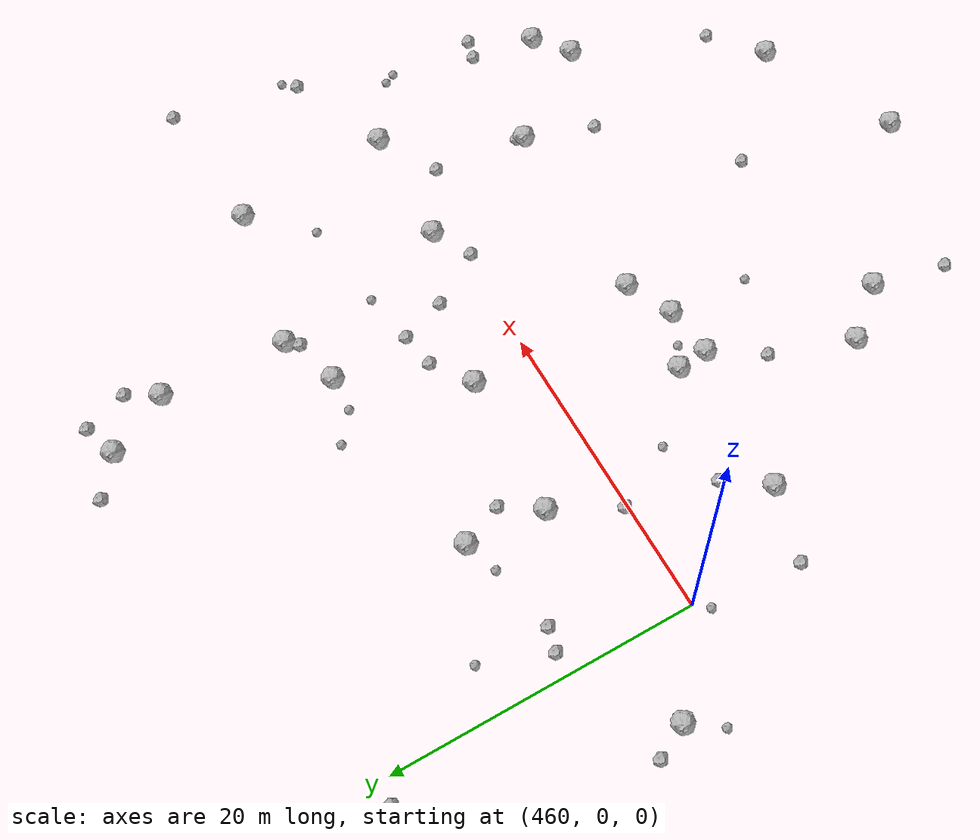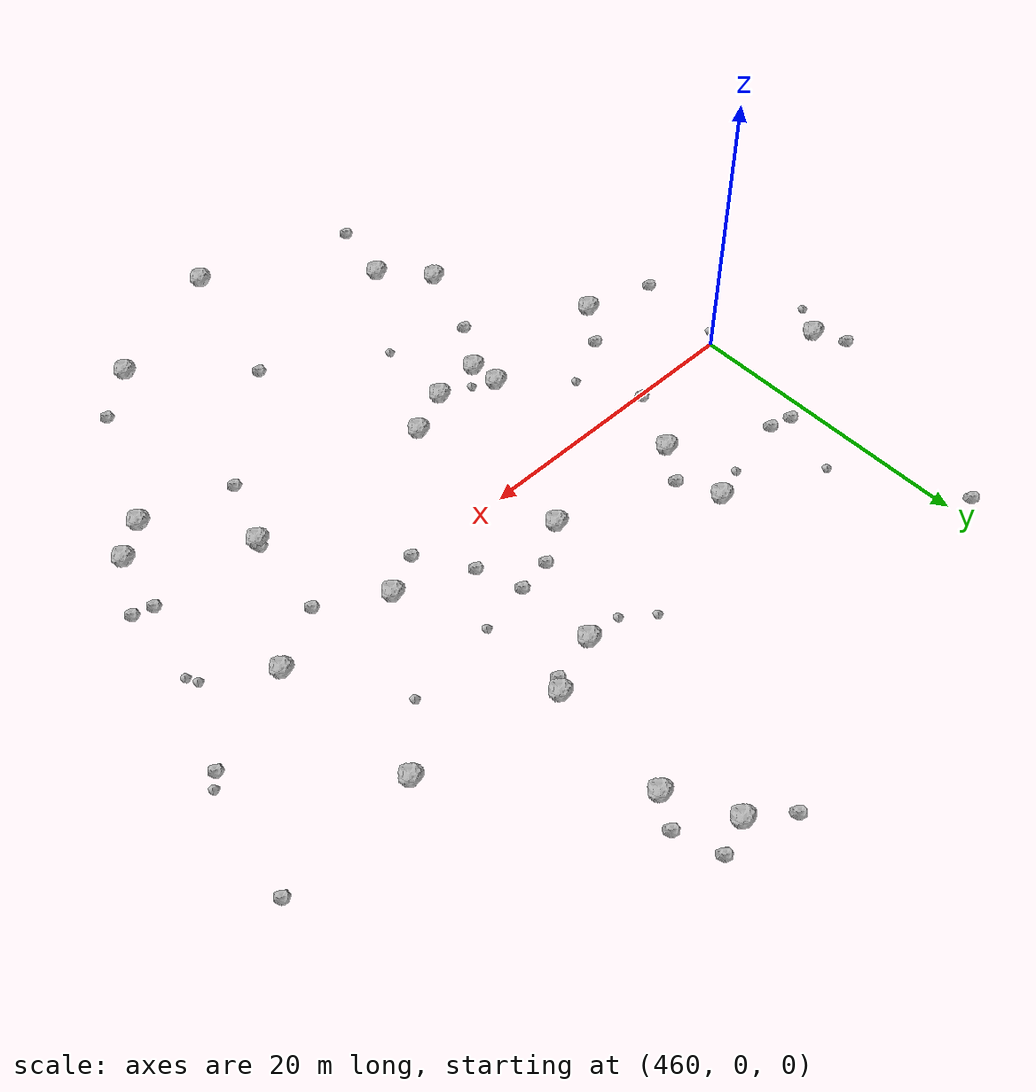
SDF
<sdf version="1.6">
 <world name="default">
  <include><uri>model://sun</uri></include>
  <model name="rock1_12_4">
   <include><uri>model://rock1</uri><pose>472.2573137410717 -21.419214505663998 0.5 0 0 0</pose></include>
  </model>
  <model name="rock1_12_5">
   <include><uri>model://rock1</uri><pose>473.4146690189265 -7.528972343135692 0.5 0 0 0</pose></include>
  </model>
  <model name="rock1_12_6">
   <include><uri>model://rock1</uri><pose>489.72542316161883 1.013141077101622 0.5 0 0 0</pose></include>
  </model>
  <model name="rock1_12_7">
   <include><uri>model://rock1</uri><pose>476.9829679849034 -9.203507646456437 0.5 0 0 0</pose></include>
  </model>
  <model name="rock1_12_8">
   <include><uri>model://rock1</uri><pose>469.3855876440374 4.445551245465943 0.5 0 0 0</pose></include>
  </model>
  <model name="rock1_12_9">
   <include><uri>model://rock1</uri><pose>473.59314934399504 -9.579928350936129 0.5 0 0 0</pose></include>
  </model>
  <model name="rock1_12_10">
   <include><uri>model://rock1</uri><pose>483.53764823522977 11.43358600244811 0.5 0 0 0</pose></include>
  </model>
  <model name="rock1_12_11">
   <include><uri>model://rock1</uri><pose>454.33678342081475 4.300732684565602 0.5 0 0 0</pose></include>
  </model>
  <model name="rock1_12_12">
   <include><uri>model://rock1</uri><pose>469.84441386321976 9.62083753899315 0.5 0 0 0</pose></include>
  </model>
  <model name="rock1_12_13">
   <include><uri>model://rock1</uri><pose>493.1731420564867 -7.813608488217334 0.5 0 0 0</pose></include>
  </model>
  <model name="rock1_12_14">
   <include><uri>model://rock1</uri><pose>481.8755818067414 -29.608089578063577 0.5 0 0 0</pose></include>
  </model>
  <model name="rock1_12_15">
   <include><uri>model://rock1</uri><pose>490.9488961409282 -25.64850027285195 0.5 0 0 0</pose></include>
  </model>
  <model name="rock1_12_16">
   <include><uri>model://rock1</uri><pose>496.9905582678865 11.074827921372908 0.5 0 0 0</pose></include>
  </model>
  <model name="rock1_12_17">
   <include><uri>model://rock1</uri><pose>463.84552300761106 -8.241316272881598 0.5 0 0 0</pose></include>
  </model>
  <model name="rock1_12_18">
   <include><uri>model://rock1</uri><pose>497.8352150582271 0.6727057492773909 0.5 0 0 0</pose></include>
  </model>
  <model name="rock1_12_19">
   <include><uri>model://rock1</uri><pose>478.92086594148356 3.9751101383854746 0.5 0 0 0</pose></include>
  </model>
  <model name="rock1_12_20">
   <include><uri>model://rock1</uri><pose>487.8336034693055 21.116866880587864 0.5 0 0 0</pose></include>
  </model>
  <model name="rock1_12_21">
   <include><uri>model://rock1</uri><pose>480.0658388320797 -7.799750647385665 0.5 0 0 0</pose></include>
  </model>
  <model name="rock1_12_22">
   <include><uri>model://rock1</uri><pose>469.55894198458003 -18.23106593339554 0.5 0 0 0</pose></include>
  </model>
  <model name="rock1_12_23">
   <include><uri>model://rock1</uri><pose>499.93664997637336 -12.363081694647256 0.5 0 0 0</pose></include>
  </model>
  <model name="rock1_12_24">
   <include><uri>model://rock1</uri><pose>497.67215723486703 -14.121135952856982 0.5 0 0 0</pose></include>
  </model>
  <model name="rock1_12_25">
   <include><uri>model://rock1</uri><pose>487.3194002231327 12.88781484996887 0.5 0 0 0</pose></include>
  </model>
  <model name="rock1_12_26">
   <include><uri>model://rock1</uri><pose>485.7586920721754 25.247401558798686 0.5 0 0 0</pose></include>
  </model>
  <model name="rock2_12_0">
   <include><uri>model://rock2</uri><pose>488.9898200251493 23.10879115923816 0.3 0 0 0</pose></include>
  </model>
  <model name="rock2_12_1">
   <include><uri>model://rock2</uri><pose>483.2831216160079 27.146601434580404 0.3 0 0 0</pose></include>
  </model>
  <model name="rock2_12_2">
   <include><uri>model://rock2</uri><pose>487.063687714339 -0.34830399836538106 0.3 0 0 0</pose></include>
  </model>
  <model name="rock2_12_3">
   <include><uri>model://rock2</uri><pose>487.99584540284593 26.005949093321178 0.3 0 0 0</pose></include>
  </model>
  <model name="rock2_12_4">
   <include><uri>model://rock2</uri><pose>491.5568310360284 -12.365222767021834 0.3 0 0 0</pose></include>
  </model>
  <model name="rock2_12_5">
   <include><uri>model://rock2</uri><pose>458.96988345140545 -6.880782629955064 0.3 0 0 0</pose></include>
  </model>
  <model name="rock2_12_6">
   <include><uri>model://rock2</uri><pose>453.2306558474525 6.445502412836987 0.3 0 0 0</pose></include>
  </model>
  <model name="rock2_12_7">
   <include><uri>model://rock2</uri><pose>484.3179819110022 -19.378739889905447 0.3 0 0 0</pose></include>
  </model>
  <model name="rock2_12_8">
   <include><uri>model://rock2</uri><pose>506.31311758767754 11.744637076466589 0.3 0 0 0</pose></include>
  </model>
  <model name="rock2_12_9">
   <include><uri>model://rock2</uri><pose>481.46511293419627 5.735616314305474 0.3 0 0 0</pose></include>
  </model>
  <model name="rock2_12_10">
   <include><uri>model://rock2</uri><pose>471.11905852148095 -26.25922024707936 0.3 0 0 0</pose></include>
  </model>
  <model name="rock2_12_11">
   <include><uri>model://rock2</uri><pose>484.8735164979233 3.1139809424654032 0.3 0 0 0</pose></include>
  </model>
  <model name="rock2_12_12">
   <include><uri>model://rock2</uri><pose>504.4575155906293 3.408484014665433 0.3 0 0 0</pose></include>
  </model>
  <model name="rock2_12_13">
   <include><uri>model://rock2</uri><pose>461.48094410226975 8.378366450689086 0.3 0 0 0</pose></include>
  </model>
  <model name="rock2_12_14">
   <include><uri>model://rock2</uri><pose>470.99313188361805 6.844253855233653 0.3 0 0 0</pose></include>
  </model>
  <model name="rock2_12_15">
   <include><uri>model://rock2</uri><pose>465.80066707930536 -5.544024833939208 0.3 0 0 0</pose></include>
  </model>
  <model name="rock2_12_16">
   <include><uri>model://rock2</uri><pose>483.8203032705749 6.121408772926166 0.3 0 0 0</pose></include>
  </model>
  <model name="rock2_12_17">
   <include><uri>model://rock2</uri><pose>494.1497564268393 -22.930966510475606 0.3 0 0 0</pose></include>
  </model>
  <model name="rock2_12_18">
   <include><uri>model://rock2</uri><pose>493.86161404320455 -1.543381077440479 0.3 0 0 0</pose></include>
  </model>
  <model name="rock2_12_19">
   <include><uri>model://rock2</uri><pose>467.1696419452912 0.23137925419008099 0.3 0 0 0</pose></include>
  </model>
  <model name="rock2_12_20">
   <include><uri>model://rock2</uri><pose>463.0400624121009 7.975146773682226 0.3 0 0 0</pose></include>
  </model>
  <model name="rock2_12_21">
   <include><uri>model://rock2</uri><pose>501.9175343775962 -8.475027946245024 0.3 0 0 0</pose></include>
  </model>
  <model name="rock2_12_22">
   <include><uri>model://rock2</uri><pose>486.6819157503179 12.121250407063407 0.3 0 0 0</pose></include>
  </model>
  <model name="rock2_12_23">
   <include><uri>model://rock2</uri><pose>493.29214556442605 -7.354410478649932 0.3 0 0 0</pose></include>
  </model>
  <model name="rock2_12_24">
   <include><uri>model://rock2</uri><pose>471.4223031725297 -12.8615238069554 0.3 0 0 0</pose></include>
  </model>
  <model name="rock2_12_25">
   <include><uri>model://rock2</uri><pose>458.5158991311809 20.697068388467052 0.3 0 0 0</pose></include>
  </model>
  <model name="rock2_12_26">
   <include><uri>model://rock2</uri><pose>500.6040170054918 -8.112280250729082 0.3 0 0 0</pose></include>
  </model>
  <model name="rock3_12_0">
   <include><uri>model://rock3</uri><pose>479.26885712802147 12.999758178393279 0.2 0 0 0</pose></include>
  </model>
  <model name="rock3_12_1">
   <include><uri>model://rock3</uri><pose>467.5318028970228 8.853057832911581 0.2 0 0 0</pose></include>
  </model>
  <model name="rock3_12_2">
   <include><uri>model://rock3</uri><pose>452.8418994545256 2.216416284315059 0.2 0 0 0</pose></include>
  </model>
  <model name="rock3_12_3">
   <include><uri>model://rock3</uri><pose>505.1549587968778 4.178611634556141 0.2 0 0 0</pose></include>
  </model>
  <model name="rock3_12_4">
   <include><uri>model://rock3</uri><pose>474.7807624229486 -8.394184171601779 0.2 0 0 0</pose></include>
  </model>
  <model name="rock3_12_5">
   <include><uri>model://rock3</uri><pose>493.5162924702321 7.435552196391733 0.2 0 0 0</pose></include>
  </model>
  <model name="rock3_12_6">
   <include><uri>model://rock3</uri><pose>481.1356761787789 11.511502017545148 0.2 0 0 0</pose></include>
  </model>
  <model name="rock3_12_7">
   <include><uri>model://rock3</uri><pose>459.2367449221875 -0.862018548787006 0.2 0 0 0</pose></include>
  </model>
  <model name="rock3_12_8">
   <include><uri>model://rock3</uri><pose>469.3581893276847 -3.8773103356836103 0.2 0 0 0</pose></include>
  </model>
  <model name="rock3_12_9">
   <include><uri>model://rock3</uri><pose>501.73947299894456 -2.028211819371645 0.2 0 0 0</pose></include>
  </model>
  <model name="rock3_12_10">
   <include><uri>model://rock3</uri><pose>487.2943284732286 6.717526255430421 0.2 0 0 0</pose></include>
  </model>
  <model name="rock3_12_11">
   <include><uri>model://rock3</uri><pose>476.67374225205515 -14.664930382004496 0.2 0 0 0</pose></include>
  </model>
  <model name="rock3_12_12">
   <include><uri>model://rock3</uri><pose>502.11518607684735 -2.749307434613936 0.2 0 0 0</pose></include>
  </model>
  <model name="rock3_12_13">
   <include><uri>model://rock3</uri><pose>463.1302001646344 12.731075464983569 0.2 0 0 0</pose></include>
  </model>
 </world>
</sdf>
